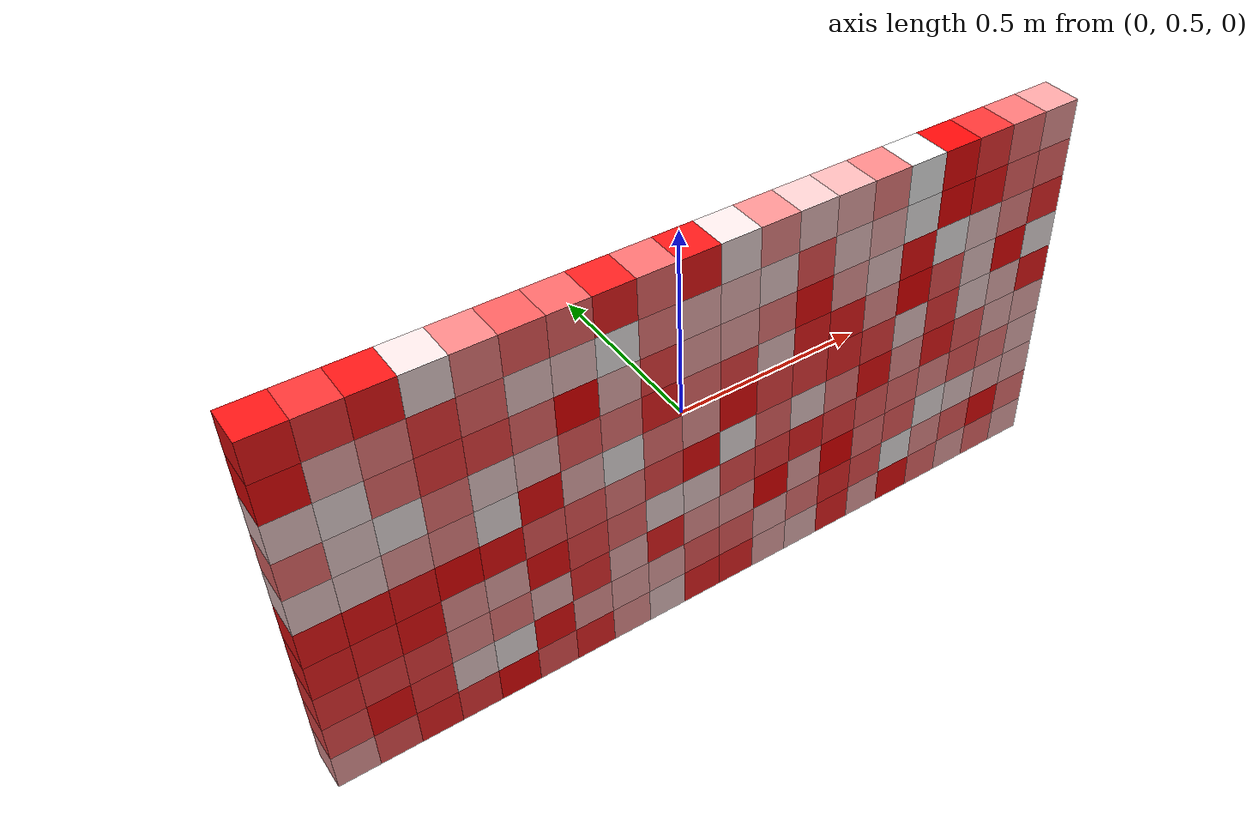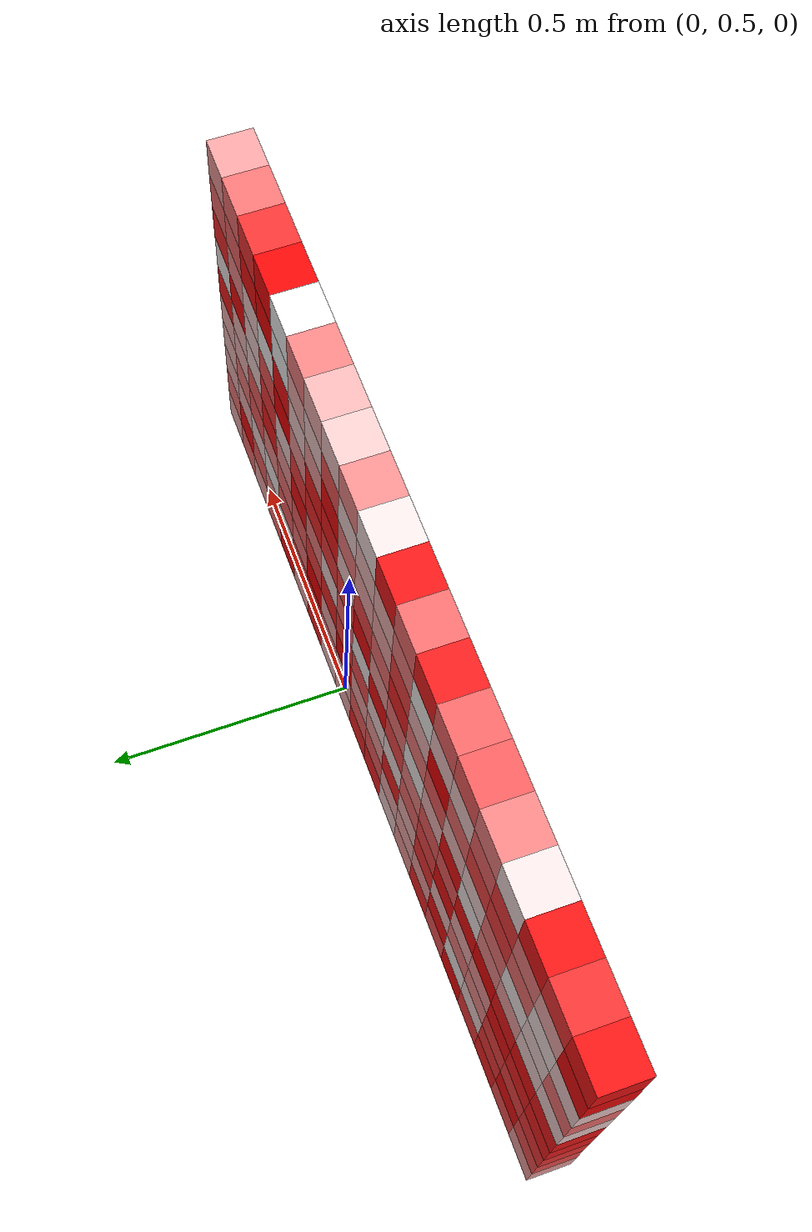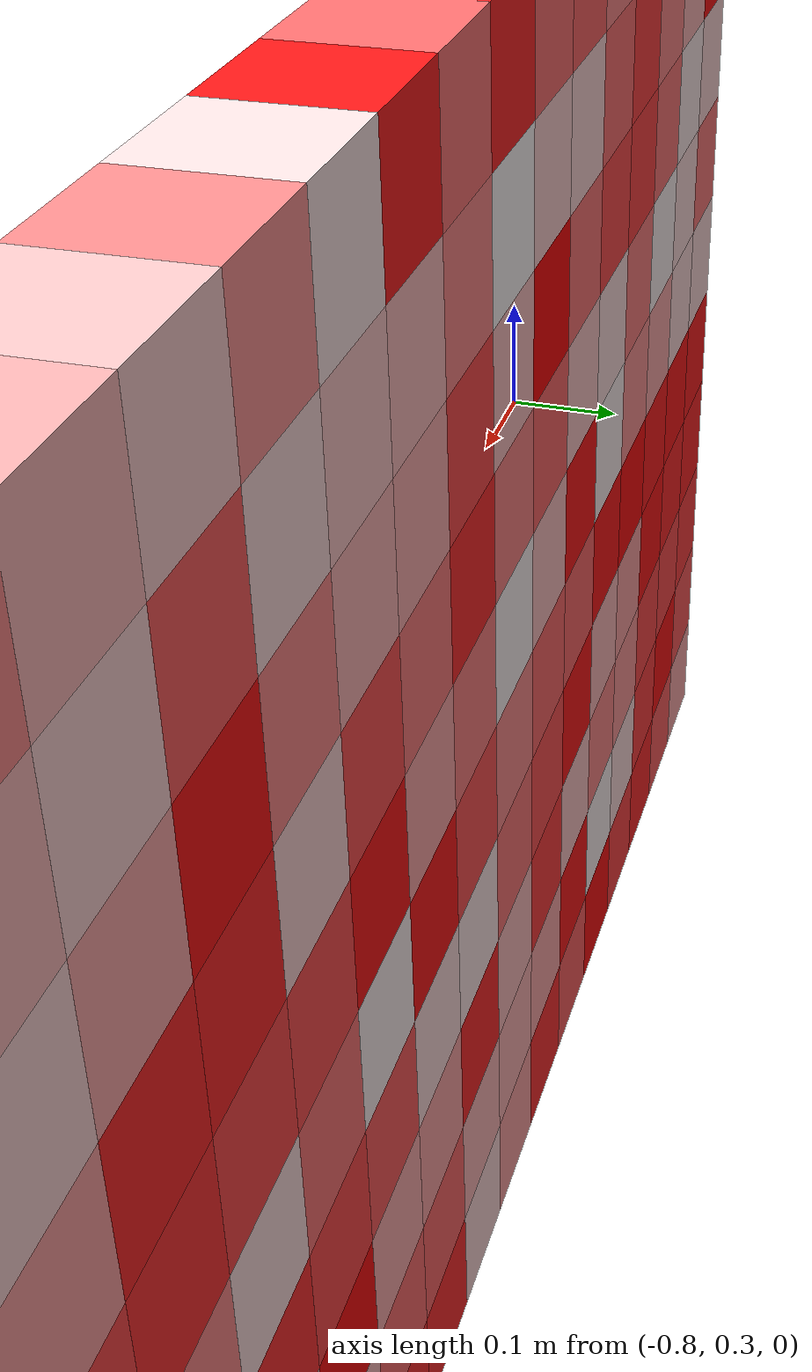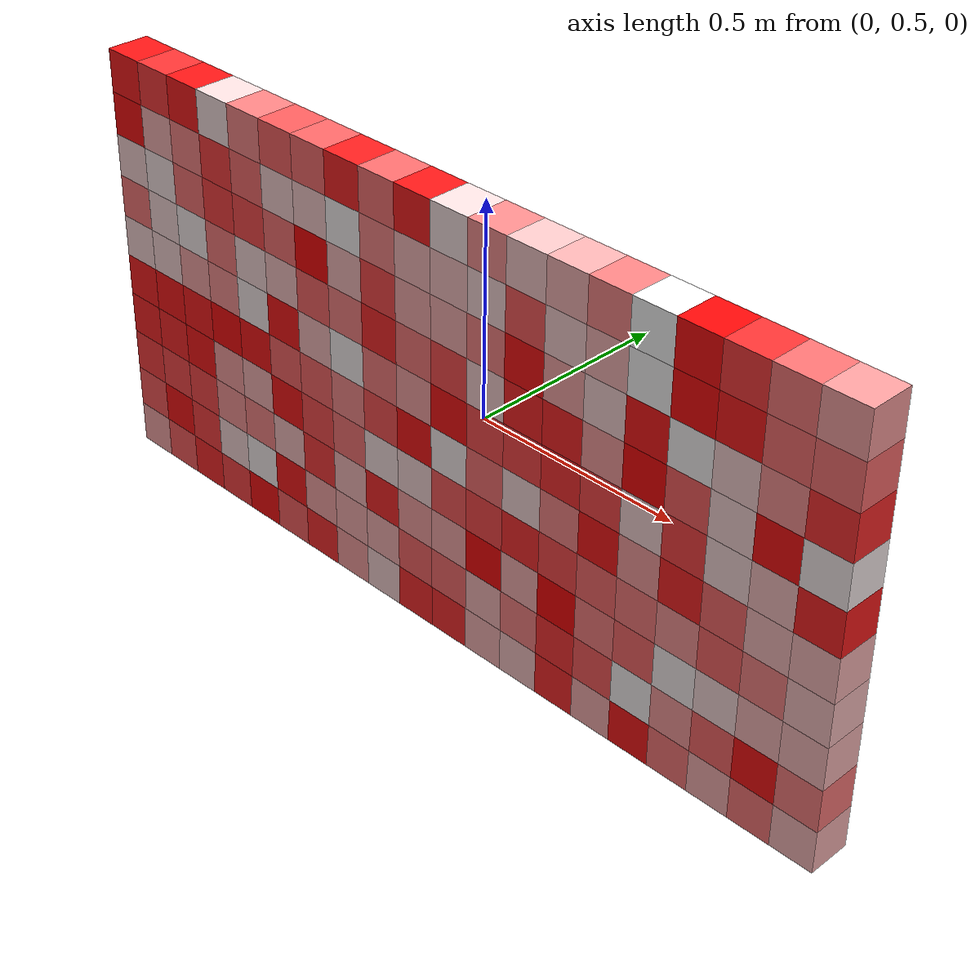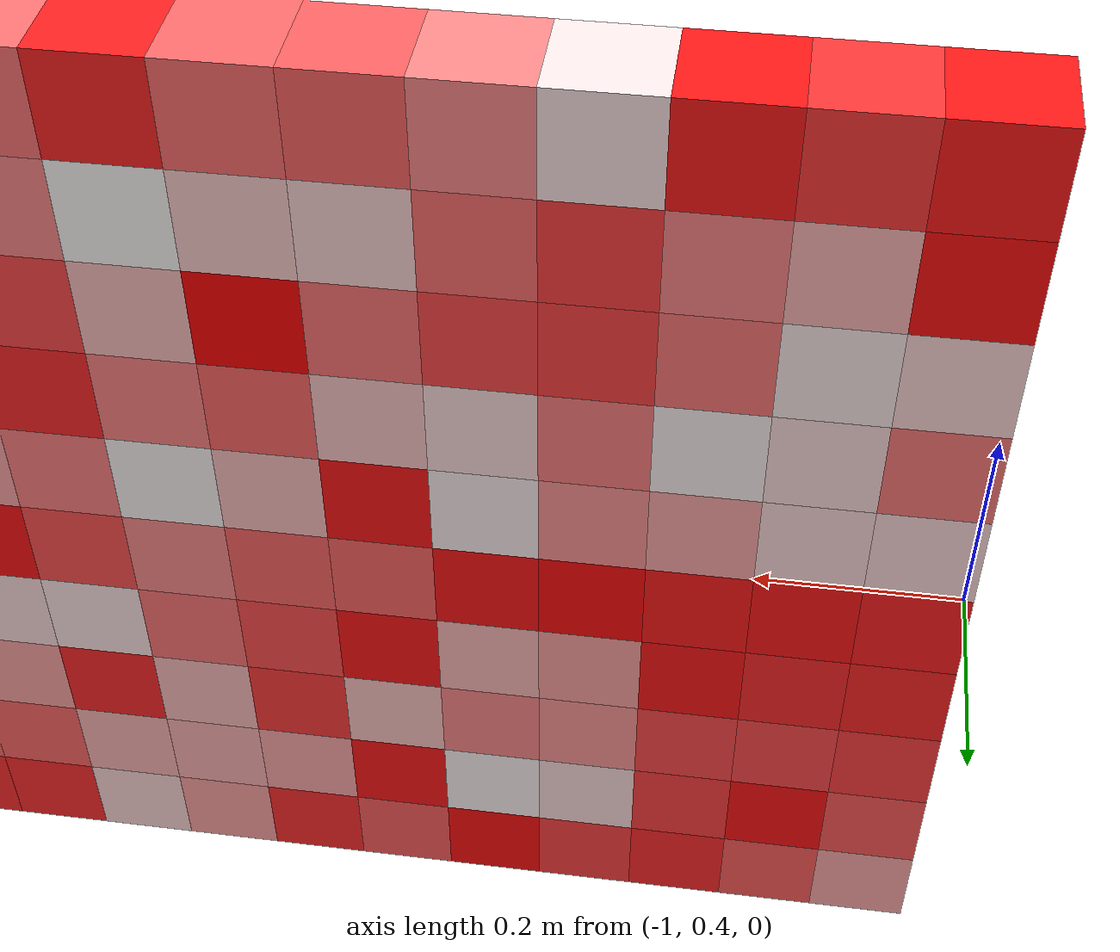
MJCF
<!-- This file was generated by build_floor.py -->
<!-- It is not recommended to edit this file -->
<mujoco>
    <default>
        <geom density="100" friction=".5" rgba="1 .6 .8 1" />
    </default>
    <worldbody>
        <geom type="box" size=".05 .05 .05" pos="-0.95 .4 0.5" rgba="1 0.0843386488104424 0.0843386488104424 1" />
<geom type="box" size=".05 .05 .05" pos="-0.85 .4 0.5" rgba="1 0.20824107793346724 0.20824107793346724 1" />
<geom type="box" size=".05 .05 .05" pos="-0.75 .4 0.5" rgba="1 0.08690658550183783 0.08690658550183783 1" />
<geom type="box" size=".05 .05 .05" pos="-0.6499999999999999 .4 0.5" rgba="1 0.8983276841788679 0.8983276841788679 1" />
<geom type="box" size=".05 .05 .05" pos="-0.5499999999999999 .4 0.5" rgba="1 0.524817365529806 0.524817365529806 1" />
<geom type="box" size=".05 .05 .05" pos="-0.44999999999999996 .4 0.5" rgba="1 0.3749115051483711 0.3749115051483711 1" />
<geom type="box" size=".05 .05 .05" pos="-0.34999999999999987 .4 0.5" rgba="1 0.4106676028623878 0.4106676028623878 1" />
<geom type="box" size=".05 .05 .05" pos="-0.2499999999999999 .4 0.5" rgba="1 0.12285452887260218 0.12285452887260218 1" />
<geom type="box" size=".05 .05 .05" pos="-0.1499999999999999 .4 0.5" rgba="1 0.4389425636365972 0.4389425636365972 1" />
<geom type="box" size=".05 .05 .05" pos="-0.04999999999999993 .4 0.5" rgba="1 0.09460154276544497 0.09460154276544497 1" />
<geom type="box" size=".05 .05 .05" pos="0.050000000000000044 .4 0.5" rgba="1 0.906213252528593 0.906213252528593 1" />
<geom type="box" size=".05 .05 .05" pos="0.15000000000000013 .4 0.5" rgba="1 0.5666486969858561 0.5666486969858561 1" />
<geom type="box" size=".05 .05 .05" pos="0.2500000000000002 .4 0.5" rgba="1 0.8065635793825899 0.8065635793825899 1" />
<geom type="box" size=".05 .05 .05" pos="0.3500000000000001 .4 0.5" rgba="1 0.7186199749554396 0.7186199749554396 1" />
<geom type="box" size=".05 .05 .05" pos="0.4500000000000002 .4 0.5" rgba="1 0.5275186662642011 0.5275186662642011 1" />
<geom type="box" size=".05 .05 .05" pos="0.55 .4 0.5" rgba="1 0.9973152459640588 0.9973152459640588 1" />
<geom type="box" size=".05 .05 .05" pos="0.6500000000000001 .4 0.5" rgba="1 0.034561371520016704 0.034561371520016704 1" />
<geom type="box" size=".05 .05 .05" pos="0.7500000000000002 .4 0.5" rgba="1 0.2079829966453124 0.2079829966453124 1" />
<geom type="box" size=".05 .05 .05" pos="0.8500000000000001 .4 0.5" rgba="1 0.46191826884111675 0.46191826884111675 1" />
<geom type="box" size=".05 .05 .05" pos="0.9500000000000002 .4 0.5" rgba="1 0.6375222119756888 0.6375222119756888 1" />
<geom type="box" size=".05 .05 .05" pos="-0.95 .4 0.4" rgba="1 0.041166231678635756 0.041166231678635756 1" />
<geom type="box" size=".05 .05 .05" pos="-0.85 .4 0.4" rgba="1 0.7113653340310193 0.7113653340310193 1" />
<geom type="box" size=".05 .05 .05" pos="-0.75 .4 0.4" rgba="1 0.5158610919841387 0.5158610919841387 1" />
<geom type="box" size=".05 .05 .05" pos="-0.6499999999999999 .4 0.4" rgba="1 0.22925030116748346 0.22925030116748346 1" />
<geom type="box" size=".05 .05 .05" pos="-0.5499999999999999 .4 0.4" rgba="1 0.4119174963619221 0.4119174963619221 1" />
<geom type="box" size=".05 .05 .05" pos="-0.44999999999999996 .4 0.4" rgba="1 0.8346381542170064 0.8346381542170064 1" />
<geom type="box" size=".05 .05 .05" pos="-0.34999999999999987 .4 0.4" rgba="1 0.8077594302749237 0.8077594302749237 1" />
<geom type="box" size=".05 .05 .05" pos="-0.2499999999999999 .4 0.4" rgba="1 0.9760664820326201 0.9760664820326201 1" />
<geom type="box" size=".05 .05 .05" pos="-0.1499999999999999 .4 0.4" rgba="1 0.5174061455254846 0.5174061455254846 1" />
<geom type="box" size=".05 .05 .05" pos="-0.04999999999999993 .4 0.4" rgba="1 0.7382075313783355 0.7382075313783355 1" />
<geom type="box" size=".05 .05 .05" pos="0.050000000000000044 .4 0.4" rgba="1 0.7724667743015738 0.7724667743015738 1" />
<geom type="box" size=".05 .05 .05" pos="0.15000000000000013 .4 0.4" rgba="1 0.8632798713043879 0.8632798713043879 1" />
<geom type="box" size=".05 .05 .05" pos="0.2500000000000002 .4 0.4" rgba="1 0.3404173514674915 0.3404173514674915 1" />
<geom type="box" size=".05 .05 .05" pos="0.3500000000000001 .4 0.4" rgba="1 0.8302856995430332 0.8302856995430332 1" />
<geom type="box" size=".05 .05 .05" pos="0.4500000000000002 .4 0.4" rgba="1 0.7233152208895487 0.7233152208895487 1" />
<geom type="box" size=".05 .05 .05" pos="0.55 .4 0.4" rgba="1 0.9859579285549865 0.9859579285549865 1" />
<geom type="box" size=".05 .05 .05" pos="0.6500000000000001 .4 0.4" rgba="1 0.020406247927283294 0.020406247927283294 1" />
<geom type="box" size=".05 .05 .05" pos="0.7500000000000002 .4 0.4" rgba="1 0.07602651643967595 0.07602651643967595 1" />
<geom type="box" size=".05 .05 .05" pos="0.8500000000000001 .4 0.4" rgba="1 0.42223470665769536 0.42223470665769536 1" />
<geom type="box" size=".05 .05 .05" pos="0.9500000000000002 .4 0.4" rgba="1 0.43735344269005116 0.43735344269005116 1" />
<geom type="box" size=".05 .05 .05" pos="-0.95 .4 0.3" rgba="1 0.8394960805987156 0.8394960805987156 1" />
<geom type="box" size=".05 .05 .05" pos="-0.85 .4 0.3" rgba="1 0.9186090807783429 0.9186090807783429 1" />
<geom type="box" size=".05 .05 .05" pos="-0.75 .4 0.3" rgba="1 0.44927021259360633 0.44927021259360633 1" />
<geom type="box" size=".05 .05 .05" pos="-0.6499999999999999 .4 0.3" rgba="1 0.23706506392211757 0.23706506392211757 1" />
<geom type="box" size=".05 .05 .05" pos="-0.5499999999999999 .4 0.3" rgba="1 0.2726726940779246 0.2726726940779246 1" />
<geom type="box" size=".05 .05 .05" pos="-0.44999999999999996 .4 0.3" rgba="1 0.43786209995891356 0.43786209995891356 1" />
<geom type="box" size=".05 .05 .05" pos="-0.34999999999999987 .4 0.3" rgba="1 0.0026284207404946303 0.0026284207404946303 1" />
<geom type="box" size=".05 .05 .05" pos="-0.2499999999999999 .4 0.3" rgba="1 0.7484078315183091 0.7484078315183091 1" />
<geom type="box" size=".05 .05 .05" pos="-0.1499999999999999 .4 0.3" rgba="1 0.26584949062247765 0.26584949062247765 1" />
<geom type="box" size=".05 .05 .05" pos="-0.04999999999999993 .4 0.3" rgba="1 0.6789778425453658 0.6789778425453658 1" />
<geom type="box" size=".05 .05 .05" pos="0.050000000000000044 .4 0.3" rgba="1 0.6973967992498402 0.6973967992498402 1" />
<geom type="box" size=".05 .05 .05" pos="0.15000000000000013 .4 0.3" rgba="1 0.512138436113622 0.512138436113622 1" />
<geom type="box" size=".05 .05 .05" pos="0.2500000000000002 .4 0.3" rgba="1 0.04609930784624783 0.04609930784624783 1" />
<geom type="box" size=".05 .05 .05" pos="0.3500000000000001 .4 0.3" rgba="1 0.6533810574189121 0.6533810574189121 1" />
<geom type="box" size=".05 .05 .05" pos="0.4500000000000002 .4 0.3" rgba="1 0.8392804697782776 0.8392804697782776 1" />
<geom type="box" size=".05 .05 .05" pos="0.55 .4 0.3" rgba="1 0.06420023089680904 0.06420023089680904 1" />
<geom type="box" size=".05 .05 .05" pos="0.6500000000000001 .4 0.3" rgba="1 0.9834752420990392 0.9834752420990392 1" />
<geom type="box" size=".05 .05 .05" pos="0.7500000000000002 .4 0.3" rgba="1 0.8318517842292215 0.8318517842292215 1" />
<geom type="box" size=".05 .05 .05" pos="0.8500000000000001 .4 0.3" rgba="1 0.5702865111081232 0.5702865111081232 1" />
<geom type="box" size=".05 .05 .05" pos="0.9500000000000002 .4 0.3" rgba="1 0.17034109534784825 0.17034109534784825 1" />
<geom type="box" size=".05 .05 .05" pos="-0.95 .4 0.19999999999999996" rgba="1 0.46342519472449273 0.46342519472449273 1" />
<geom type="box" size=".05 .05 .05" pos="-0.85 .4 0.19999999999999996" rgba="1 0.8636752946711495 0.8636752946711495 1" />
<geom type="box" size=".05 .05 .05" pos="-0.75 .4 0.19999999999999996" rgba="1 0.9514133217410293 0.9514133217410293 1" />
<geom type="box" size=".05 .05 .05" pos="-0.6499999999999999 .4 0.19999999999999996" rgba="1 0.4809899807002761 0.4809899807002761 1" />
<geom type="box" size=".05 .05 .05" pos="-0.5499999999999999 .4 0.19999999999999996" rgba="1 0.8672949096785756 0.8672949096785756 1" />
<geom type="box" size=".05 .05 .05" pos="-0.44999999999999996 .4 0.19999999999999996" rgba="1 0.778811279665681 0.778811279665681 1" />
<geom type="box" size=".05 .05 .05" pos="-0.34999999999999987 .4 0.19999999999999996" rgba="1 0.38166756522392076 0.38166756522392076 1" />
<geom type="box" size=".05 .05 .05" pos="-0.2499999999999999 .4 0.19999999999999996" rgba="1 0.5002512139232886 0.5002512139232886 1" />
<geom type="box" size=".05 .05 .05" pos="-0.1499999999999999 .4 0.19999999999999996" rgba="1 0.1366548626824896 0.1366548626824896 1" />
<geom type="box" size=".05 .05 .05" pos="-0.04999999999999993 .4 0.19999999999999996" rgba="1 0.46247433665230697 0.46247433665230697 1" />
<geom type="box" size=".05 .05 .05" pos="0.050000000000000044 .4 0.19999999999999996" rgba="1 0.2856068172547028 0.2856068172547028 1" />
<geom type="box" size=".05 .05 .05" pos="0.15000000000000013 .4 0.19999999999999996" rgba="1 0.8272236661058108 0.8272236661058108 1" />
<geom type="box" size=".05 .05 .05" pos="0.2500000000000002 .4 0.19999999999999996" rgba="1 0.11648889443045041 0.11648889443045041 1" />
<geom type="box" size=".05 .05 .05" pos="0.3500000000000001 .4 0.19999999999999996" rgba="1 0.11974448377453561 0.11974448377453561 1" />
<geom type="box" size=".05 .05 .05" pos="0.4500000000000002 .4 0.19999999999999996" rgba="1 0.6137736985579536 0.6137736985579536 1" />
<geom type="box" size=".05 .05 .05" pos="0.55 .4 0.19999999999999996" rgba="1 0.006097505622167154 0.006097505622167154 1" />
<geom type="box" size=".05 .05 .05" pos="0.6500000000000001 .4 0.19999999999999996" rgba="1 0.3546577349794259 0.3546577349794259 1" />
<geom type="box" size=".05 .05 .05" pos="0.7500000000000002 .4 0.19999999999999996" rgba="1 0.8510907508925156 0.8510907508925156 1" />
<geom type="box" size=".05 .05 .05" pos="0.8500000000000001 .4 0.19999999999999996" rgba="1 0.03891622690949015 0.03891622690949015 1" />
<geom type="box" size=".05 .05 .05" pos="0.9500000000000002 .4 0.19999999999999996" rgba="1 0.9511961249951713 0.9511961249951713 1" />
<geom type="box" size=".05 .05 .05" pos="-0.95 .4 0.09999999999999998" rgba="1 0.8533839293196619 0.8533839293196619 1" />
<geom type="box" size=".05 .05 .05" pos="-0.85 .4 0.09999999999999998" rgba="1 0.8530928580513683 0.8530928580513683 1" />
<geom type="box" size=".05 .05 .05" pos="-0.75 .4 0.09999999999999998" rgba="1 0.6547673364042729 0.6547673364042729 1" />
<geom type="box" size=".05 .05 .05" pos="-0.6499999999999999 .4 0.09999999999999998" rgba="1 0.5672720752225513 0.5672720752225513 1" />
<geom type="box" size=".05 .05 .05" pos="-0.5499999999999999 .4 0.09999999999999998" rgba="1 0.9448033242020363 0.9448033242020363 1" />
<geom type="box" size=".05 .05 .05" pos="-0.44999999999999996 .4 0.09999999999999998" rgba="1 0.059840865086407735 0.059840865086407735 1" />
<geom type="box" size=".05 .05 .05" pos="-0.34999999999999987 .4 0.09999999999999998" rgba="1 0.7472355206144325 0.7472355206144325 1" />
<geom type="box" size=".05 .05 .05" pos="-0.2499999999999999 .4 0.09999999999999998" rgba="1 0.9634538895718016 0.9634538895718016 1" />
<geom type="box" size=".05 .05 .05" pos="-0.1499999999999999 .4 0.09999999999999998" rgba="1 0.4815330897097817 0.4815330897097817 1" />
<geom type="box" size=".05 .05 .05" pos="-0.04999999999999993 .4 0.09999999999999998" rgba="1 0.6404884678914993 0.6404884678914993 1" />
<geom type="box" size=".05 .05 .05" pos="0.050000000000000044 .4 0.09999999999999998" rgba="1 0.05040097055955828 0.05040097055955828 1" />
<geom type="box" size=".05 .05 .05" pos="0.15000000000000013 .4 0.09999999999999998" rgba="1 0.2839440481543466 0.2839440481543466 1" />
<geom type="box" size=".05 .05 .05" pos="0.2500000000000002 .4 0.09999999999999998" rgba="1 0.25110542268748637 0.25110542268748637 1" />
<geom type="box" size=".05 .05 .05" pos="0.3500000000000001 .4 0.09999999999999998" rgba="1 0.161831002519501 0.161831002519501 1" />
<geom type="box" size=".05 .05 .05" pos="0.4500000000000002 .4 0.09999999999999998" rgba="1 0.2586148280535461 0.2586148280535461 1" />
<geom type="box" size=".05 .05 .05" pos="0.55 .4 0.09999999999999998" rgba="1 0.8494290662198238 0.8494290662198238 1" />
<geom type="box" size=".05 .05 .05" pos="0.6500000000000001 .4 0.09999999999999998" rgba="1 0.23469633650143829 0.23469633650143829 1" />
<geom type="box" size=".05 .05 .05" pos="0.7500000000000002 .4 0.09999999999999998" rgba="1 0.8664924945052913 0.8664924945052913 1" />
<geom type="box" size=".05 .05 .05" pos="0.8500000000000001 .4 0.09999999999999998" rgba="1 0.7627561175547494 0.7627561175547494 1" />
<geom type="box" size=".05 .05 .05" pos="0.9500000000000002 .4 0.09999999999999998" rgba="1 0.1113862407869165 0.1113862407869165 1" />
<geom type="box" size=".05 .05 .05" pos="-0.95 .4 0.0" rgba="1 0.09856871099468745 0.09856871099468745 1" />
<geom type="box" size=".05 .05 .05" pos="-0.85 .4 0.0" rgba="1 0.07016374547667281 0.07016374547667281 1" />
<geom type="box" size=".05 .05 .05" pos="-0.75 .4 0.0" rgba="1 0.08782905488402715 0.08782905488402715 1" />
<geom type="box" size=".05 .05 .05" pos="-0.6499999999999999 .4 0.0" rgba="1 0.027297748111895004 0.027297748111895004 1" />
<geom type="box" size=".05 .05 .05" pos="-0.5499999999999999 .4 0.0" rgba="1 0.06319940949170688 0.06319940949170688 1" />
<geom type="box" size=".05 .05 .05" pos="-0.44999999999999996 .4 0.0" rgba="1 0.38079971739795515 0.38079971739795515 1" />
<geom type="box" size=".05 .05 .05" pos="-0.34999999999999987 .4 0.0" rgba="1 0.3769909461122525 0.3769909461122525 1" />
<geom type="box" size=".05 .05 .05" pos="-0.2499999999999999 .4 0.0" rgba="1 0.5342862148040367 0.5342862148040367 1" />
<geom type="box" size=".05 .05 .05" pos="-0.1499999999999999 .4 0.0" rgba="1 0.29601648491579224 0.29601648491579224 1" />
<geom type="box" size=".05 .05 .05" pos="-0.04999999999999993 .4 0.0" rgba="1 0.05804774246329225 0.05804774246329225 1" />
<geom type="box" size=".05 .05 .05" pos="0.050000000000000044 .4 0.0" rgba="1 0.9478039935300826 0.9478039935300826 1" />
<geom type="box" size=".05 .05 .05" pos="0.15000000000000013 .4 0.0" rgba="1 0.4297670492361644 0.4297670492361644 1" />
<geom type="box" size=".05 .05 .05" pos="0.2500000000000002 .4 0.0" rgba="1 0.8652472518817669 0.8652472518817669 1" />
<geom type="box" size=".05 .05 .05" pos="0.3500000000000001 .4 0.0" rgba="1 0.518604443361808 0.518604443361808 1" />
<geom type="box" size=".05 .05 .05" pos="0.4500000000000002 .4 0.0" rgba="1 0.06109956666538319 0.06109956666538319 1" />
<geom type="box" size=".05 .05 .05" pos="0.55 .4 0.0" rgba="1 0.6189690044597971 0.6189690044597971 1" />
<geom type="box" size=".05 .05 .05" pos="0.6500000000000001 .4 0.0" rgba="1 0.10822173902519594 0.10822173902519594 1" />
<geom type="box" size=".05 .05 .05" pos="0.7500000000000002 .4 0.0" rgba="1 0.3934695555682558 0.3934695555682558 1" />
<geom type="box" size=".05 .05 .05" pos="0.8500000000000001 .4 0.0" rgba="1 0.7486662998471347 0.7486662998471347 1" />
<geom type="box" size=".05 .05 .05" pos="0.9500000000000002 .4 0.0" rgba="1 0.7364183443182721 0.7364183443182721 1" />
<geom type="box" size=".05 .05 .05" pos="-0.95 .4 -0.10000000000000009" rgba="1 0.12282202611550053 0.12282202611550053 1" />
<geom type="box" size=".05 .05 .05" pos="-0.85 .4 -0.10000000000000009" rgba="1 0.1317157225199722 0.1317157225199722 1" />
<geom type="box" size=".05 .05 .05" pos="-0.75 .4 -0.10000000000000009" rgba="1 0.06553893623007045 0.06553893623007045 1" />
<geom type="box" size=".05 .05 .05" pos="-0.6499999999999999 .4 -0.10000000000000009" rgba="1 0.6221486289879984 0.6221486289879984 1" />
<geom type="box" size=".05 .05 .05" pos="-0.5499999999999999 .4 -0.10000000000000009" rgba="1 0.7168397868942658 0.7168397868942658 1" />
<geom type="box" size=".05 .05 .05" pos="-0.44999999999999996 .4 -0.10000000000000009" rgba="1 0.060176695143056014 0.060176695143056014 1" />
<geom type="box" size=".05 .05 .05" pos="-0.34999999999999987 .4 -0.10000000000000009" rgba="1 0.28630970202950756 0.28630970202950756 1" />
<geom type="box" size=".05 .05 .05" pos="-0.2499999999999999 .4 -0.10000000000000009" rgba="1 0.43988408391413203 0.43988408391413203 1" />
<geom type="box" size=".05 .05 .05" pos="-0.1499999999999999 .4 -0.10000000000000009" rgba="1 0.8995946018806057 0.8995946018806057 1" />
<geom type="box" size=".05 .05 .05" pos="-0.04999999999999993 .4 -0.10000000000000009" rgba="1 0.8635556698636837 0.8635556698636837 1" />
<geom type="box" size=".05 .05 .05" pos="0.050000000000000044 .4 -0.10000000000000009" rgba="1 0.3275501236641696 0.3275501236641696 1" />
<geom type="box" size=".05 .05 .05" pos="0.15000000000000013 .4 -0.10000000000000009" rgba="1 0.25839983274562894 0.25839983274562894 1" />
<geom type="box" size=".05 .05 .05" pos="0.2500000000000002 .4 -0.10000000000000009" rgba="1 0.15235249962787645 0.15235249962787645 1" />
<geom type="box" size=".05 .05 .05" pos="0.3500000000000001 .4 -0.10000000000000009" rgba="1 0.2669656207172718 0.2669656207172718 1" />
<geom type="box" size=".05 .05 .05" pos="0.4500000000000002 .4 -0.10000000000000009" rgba="1 0.4001637484952848 0.4001637484952848 1" />
<geom type="box" size=".05 .05 .05" pos="0.55 .4 -0.10000000000000009" rgba="1 0.471820550128328 0.471820550128328 1" />
<geom type="box" size=".05 .05 .05" pos="0.6500000000000001 .4 -0.10000000000000009" rgba="1 0.5819535268833179 0.5819535268833179 1" />
<geom type="box" size=".05 .05 .05" pos="0.7500000000000002 .4 -0.10000000000000009" rgba="1 0.3838683421644714 0.3838683421644714 1" />
<geom type="box" size=".05 .05 .05" pos="0.8500000000000001 .4 -0.10000000000000009" rgba="1 0.507954861594935 0.507954861594935 1" />
<geom type="box" size=".05 .05 .05" pos="0.9500000000000002 .4 -0.10000000000000009" rgba="1 0.7710527156409731 0.7710527156409731 1" />
<geom type="box" size=".05 .05 .05" pos="-0.95 .4 -0.20000000000000007" rgba="1 0.22172426699211256 0.22172426699211256 1" />
<geom type="box" size=".05 .05 .05" pos="-0.85 .4 -0.20000000000000007" rgba="1 0.2696683653721982 0.2696683653721982 1" />
<geom type="box" size=".05 .05 .05" pos="-0.75 .4 -0.20000000000000007" rgba="1 0.2613648822468415 0.2613648822468415 1" />
<geom type="box" size=".05 .05 .05" pos="-0.6499999999999999 .4 -0.20000000000000007" rgba="1 0.5818665794493108 0.5818665794493108 1" />
<geom type="box" size=".05 .05 .05" pos="-0.5499999999999999 .4 -0.20000000000000007" rgba="1 0.5181545052638588 0.5181545052638588 1" />
<geom type="box" size=".05 .05 .05" pos="-0.44999999999999996 .4 -0.20000000000000007" rgba="1 0.765802329467433 0.765802329467433 1" />
<geom type="box" size=".05 .05 .05" pos="-0.34999999999999987 .4 -0.20000000000000007" rgba="1 0.20487414478819155 0.20487414478819155 1" />
<geom type="box" size=".05 .05 .05" pos="-0.2499999999999999 .4 -0.20000000000000007" rgba="1 0.7355201744281078 0.7355201744281078 1" />
<geom type="box" size=".05 .05 .05" pos="-0.1499999999999999 .4 -0.20000000000000007" rgba="1 0.13232528113431852 0.13232528113431852 1" />
<geom type="box" size=".05 .05 .05" pos="-0.04999999999999993 .4 -0.20000000000000007" rgba="1 0.6326724536456604 0.6326724536456604 1" />
<geom type="box" size=".05 .05 .05" pos="0.050000000000000044 .4 -0.20000000000000007" rgba="1 0.6673471163264445 0.6673471163264445 1" />
<geom type="box" size=".05 .05 .05" pos="0.15000000000000013 .4 -0.20000000000000007" rgba="1 0.0179851830448734 0.0179851830448734 1" />
<geom type="box" size=".05 .05 .05" pos="0.2500000000000002 .4 -0.20000000000000007" rgba="1 0.6931504275827582 0.6931504275827582 1" />
<geom type="box" size=".05 .05 .05" pos="0.3500000000000001 .4 -0.20000000000000007" rgba="1 0.0004612412082721784 0.0004612412082721784 1" />
<geom type="box" size=".05 .05 .05" pos="0.4500000000000002 .4 -0.20000000000000007" rgba="1 0.4823428100324494 0.4823428100324494 1" />
<geom type="box" size=".05 .05 .05" pos="0.55 .4 -0.20000000000000007" rgba="1 0.3918010147341534 0.3918010147341534 1" />
<geom type="box" size=".05 .05 .05" pos="0.6500000000000001 .4 -0.20000000000000007" rgba="1 0.9533663111748248 0.9533663111748248 1" />
<geom type="box" size=".05 .05 .05" pos="0.7500000000000002 .4 -0.20000000000000007" rgba="1 0.8660508679920566 0.8660508679920566 1" />
<geom type="box" size=".05 .05 .05" pos="0.8500000000000001 .4 -0.20000000000000007" rgba="1 0.7320682159939013 0.7320682159939013 1" />
<geom type="box" size=".05 .05 .05" pos="0.9500000000000002 .4 -0.20000000000000007" rgba="1 0.7410374950563955 0.7410374950563955 1" />
<geom type="box" size=".05 .05 .05" pos="-0.95 .4 -0.30000000000000004" rgba="1 0.3296385282905492 0.3296385282905492 1" />
<geom type="box" size=".05 .05 .05" pos="-0.85 .4 -0.30000000000000004" rgba="1 0.05709794129547241 0.05709794129547241 1" />
<geom type="box" size=".05 .05 .05" pos="-0.75 .4 -0.30000000000000004" rgba="1 0.2238899285693624 0.2238899285693624 1" />
<geom type="box" size=".05 .05 .05" pos="-0.6499999999999999 .4 -0.30000000000000004" rgba="1 0.8622387878011122 0.8622387878011122 1" />
<geom type="box" size=".05 .05 .05" pos="-0.5499999999999999 .4 -0.30000000000000004" rgba="1 0.9539530645103083 0.9539530645103083 1" />
<geom type="box" size=".05 .05 .05" pos="-0.44999999999999996 .4 -0.30000000000000004" rgba="1 0.06861907722881155 0.06861907722881155 1" />
<geom type="box" size=".05 .05 .05" pos="-0.34999999999999987 .4 -0.30000000000000004" rgba="1 0.6471354612171772 0.6471354612171772 1" />
<geom type="box" size=".05 .05 .05" pos="-0.2499999999999999 .4 -0.30000000000000004" rgba="1 0.6920092552015455 0.6920092552015455 1" />
<geom type="box" size=".05 .05 .05" pos="-0.1499999999999999 .4 -0.30000000000000004" rgba="1 0.708518099036126 0.708518099036126 1" />
<geom type="box" size=".05 .05 .05" pos="-0.04999999999999993 .4 -0.30000000000000004" rgba="1 0.38392382148828885 0.38392382148828885 1" />
<geom type="box" size=".05 .05 .05" pos="0.050000000000000044 .4 -0.30000000000000004" rgba="1 0.4009825565103343 0.4009825565103343 1" />
<geom type="box" size=".05 .05 .05" pos="0.15000000000000013 .4 -0.30000000000000004" rgba="1 0.7278365100348794 0.7278365100348794 1" />
<geom type="box" size=".05 .05 .05" pos="0.2500000000000002 .4 -0.30000000000000004" rgba="1 0.5026761862306933 0.5026761862306933 1" />
<geom type="box" size=".05 .05 .05" pos="0.3500000000000001 .4 -0.30000000000000004" rgba="1 0.17196261869016904 0.17196261869016904 1" />
<geom type="box" size=".05 .05 .05" pos="0.4500000000000002 .4 -0.30000000000000004" rgba="1 0.33405327144736596 0.33405327144736596 1" />
<geom type="box" size=".05 .05 .05" pos="0.55 .4 -0.30000000000000004" rgba="1 0.9718632325103926 0.9718632325103926 1" />
<geom type="box" size=".05 .05 .05" pos="0.6500000000000001 .4 -0.30000000000000004" rgba="1 0.6091524739336586 0.6091524739336586 1" />
<geom type="box" size=".05 .05 .05" pos="0.7500000000000002 .4 -0.30000000000000004" rgba="1 0.3874143798133086 0.3874143798133086 1" />
<geom type="box" size=".05 .05 .05" pos="0.8500000000000001 .4 -0.30000000000000004" rgba="1 0.048002087419607875 0.048002087419607875 1" />
<geom type="box" size=".05 .05 .05" pos="0.9500000000000002 .4 -0.30000000000000004" rgba="1 0.48886964697321367 0.48886964697321367 1" />
<geom type="box" size=".05 .05 .05" pos="-0.95 .4 -0.4" rgba="1 0.6594365075791533 0.6594365075791533 1" />
<geom type="box" size=".05 .05 .05" pos="-0.85 .4 -0.4" rgba="1 0.34508309617047705 0.34508309617047705 1" />
<geom type="box" size=".05 .05 .05" pos="-0.75 .4 -0.4" rgba="1 0.1385077705449792 0.1385077705449792 1" />
<geom type="box" size=".05 .05 .05" pos="-0.6499999999999999 .4 -0.4" rgba="1 0.23813872950270398 0.23813872950270398 1" />
<geom type="box" size=".05 .05 .05" pos="-0.5499999999999999 .4 -0.4" rgba="1 0.03899257618764307 0.03899257618764307 1" />
<geom type="box" size=".05 .05 .05" pos="-0.44999999999999996 .4 -0.4" rgba="1 0.35247680311838736 0.35247680311838736 1" />
<geom type="box" size=".05 .05 .05" pos="-0.34999999999999987 .4 -0.4" rgba="1 0.15498604452234765 0.15498604452234765 1" />
<geom type="box" size=".05 .05 .05" pos="-0.2499999999999999 .4 -0.4" rgba="1 0.6257975775445391 0.6257975775445391 1" />
<geom type="box" size=".05 .05 .05" pos="-0.1499999999999999 .4 -0.4" rgba="1 0.8409144157473116 0.8409144157473116 1" />
<geom type="box" size=".05 .05 .05" pos="-0.04999999999999993 .4 -0.4" rgba="1 0.1460601858791526 0.1460601858791526 1" />
<geom type="box" size=".05 .05 .05" pos="0.050000000000000044 .4 -0.4" rgba="1 0.1550874804620318 0.1550874804620318 1" />
<geom type="box" size=".05 .05 .05" pos="0.15000000000000013 .4 -0.4" rgba="1 0.7121978673890995 0.7121978673890995 1" />
<geom type="box" size=".05 .05 .05" pos="0.2500000000000002 .4 -0.4" rgba="1 0.7812005504363498 0.7812005504363498 1" />
<geom type="box" size=".05 .05 .05" pos="0.3500000000000001 .4 -0.4" rgba="1 0.1389824451044891 0.1389824451044891 1" />
<geom type="box" size=".05 .05 .05" pos="0.4500000000000002 .4 -0.4" rgba="1 0.6927588651687626 0.6927588651687626 1" />
<geom type="box" size=".05 .05 .05" pos="0.55 .4 -0.4" rgba="1 0.06287436487059161 0.06287436487059161 1" />
<geom type="box" size=".05 .05 .05" pos="0.6500000000000001 .4 -0.4" rgba="1 0.4539745890794725 0.4539745890794725 1" />
<geom type="box" size=".05 .05 .05" pos="0.7500000000000002 .4 -0.4" rgba="1 0.6956894518949817 0.6956894518949817 1" />
<geom type="box" size=".05 .05 .05" pos="0.8500000000000001 .4 -0.4" rgba="1 0.4529917301760501 0.4529917301760501 1" />
<geom type="box" size=".05 .05 .05" pos="0.9500000000000002 .4 -0.4" rgba="1 0.7288347373417008 0.7288347373417008 1" />

    </worldbody>
</mujoco>
